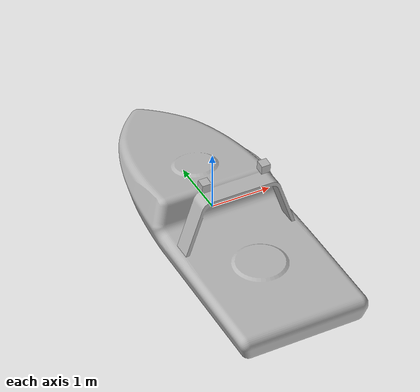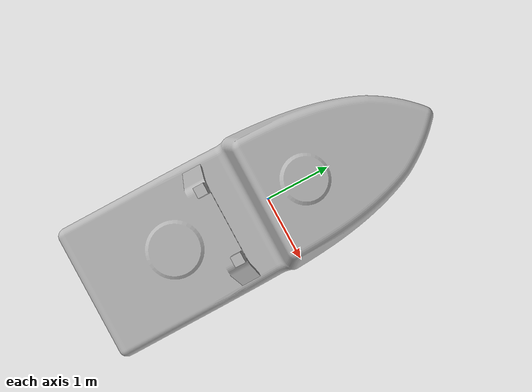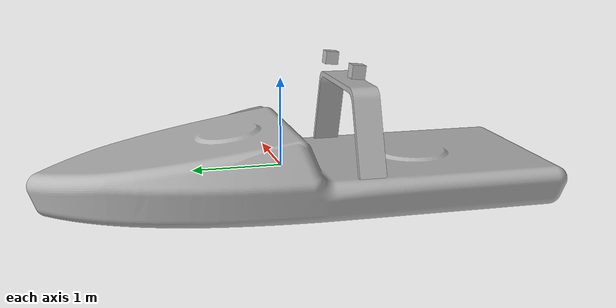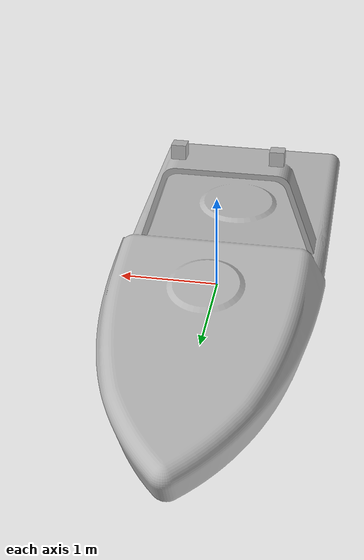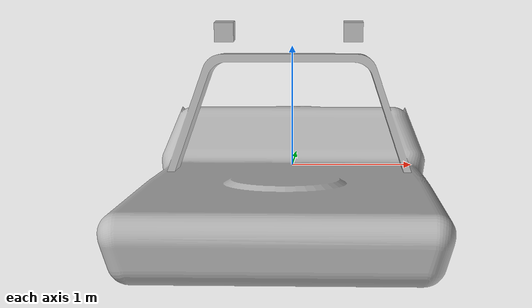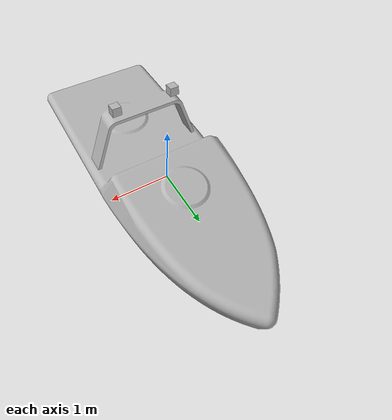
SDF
<?xml version="1.0" ?>
<sdf version="1.5">
  <model name="monodrone_2">
    <link name="link">
 	<inertial>
	     <mass>1.0</mass>
	      <inertia>
	       <ixx>0.008</ixx>
	       <ixy>0</ixy>
	       <ixz>0</ixz>
	       <iyy>0.015</iyy>
	       <iyz>0</iyz>
	       <izz>0.017</izz>
	      </inertia>
	   </inertial>
      <collision name="monodrone_2_collision">
	<surface>
	 <contact>
		 <ode>
		 <max_vel>100.0</max_vel>
		 <min_depth>0.001</min_depth>
		 </ode>
	 </contact>
	 <friction>
		 <ode>
		 <mu>100000.0</mu>
		 <mu2>100000.0</mu2>
		 </ode>
	 </friction>
	</surface>

        <geometry>
          <mesh>
	     <uri>model://mono_drone_2/meshes/monodrone_2.stl</uri>
	     <scale> 3 3 3</scale>
          </mesh>
        </geometry>
      </collision>

      <visual name="monodrone_2_visual">
        <cast_shadows>false</cast_shadows>
        <geometry>
          <mesh>
	     <uri>model://mono_drone_2/meshes/monodrone_2.dae</uri>
	      <scale> 3 3 3</scale>
          </mesh>
        </geometry>
      </visual>
    </link>

	<link name='monodrone_2/camera1_link'>
	   <pose>0.5 -0.72 1.125 0 -0.1 1.570796325</pose>
	   <inertial>
	     <pose>0 0 0 0 0 0</pose>
	     <mass>0.001</mass>
	      <inertia>
	       <ixx>0.00001</ixx>
	       <ixy>0</ixy>
	       <ixz>0</ixz>
	       <iyy>0.00002</iyy>
	       <iyz>0</iyz>
	       <izz>0.00002</izz>
	      </inertia>
	   </inertial>
	   <collision name='camera1_link_collision'>
	     <geometry>
	      <box>
	       <size>0.15 0.15 0.15</size>
	      </box>
	     </geometry>
             <!--material name="red"/-->
	   </collision>
	   <visual name='camera1_link_visual'>
	    <geometry>
	     <box>
	      <size>0.15 0.15 0.15</size>
	     </box>
	    </geometry>
	    <!--material name="red"/-->
	   </visual>

	   <sensor type="camera" name="camera1">
	    <update_rate>30.0</update_rate>
	    <camera name='head'>
	     <horizontal_fov>1.0472</horizontal_fov>
	      <image>
	       <width>640</width>
	       <height>480</height>
	       <format>R8G8B8</format>
	      </image>
	      <clip>
	       <near>0.02</near>
	       <far>300</far>
	      </clip>
	    </camera>
	    <plugin name='camera1_controller' filename='libgazebo_ros_camera.so'>
	     <robotNamespace>/</robotNamespace>
	     <alwaysOn>true</alwaysOn>
	     <updateRate>0.0</updateRate>
	     <cameraName>monodrone_2/camera1</cameraName>
	     <imageTopicName>image_raw</imageTopicName>
	     <cameraInfoTopicName>camera_info</cameraInfoTopicName>
	     <frameName>camera</frameName>
	     <hackBaseline>0.07</hackBaseline>
	     <distortionK1>0.0</distortionK1>
	     <distortionK2>0.0</distortionK2>
	     <distortionK3>0.0</distortionK3>
	     <distortionT1>0.0</distortionT1>
	     <distortionT2>0.0</distortionT2>
	    </plugin>
	   </sensor>
	 </link>

	 <joint name='monodrone_2/camera1_joint' type='fixed'>
	  <child>monodrone_2/camera1_link</child>
	  <parent>link</parent>
	 </joint>

	<link name='monodrone_2/camera2_link'>
	   <pose>-0.5 -0.72 1.125 0 -0.1 1.570796325</pose>
	   <inertial>
	     <pose>0 0 0 0 0 0</pose>
	     <mass>0.001</mass>
	      <inertia>
	       <ixx>0.00001</ixx>
	       <ixy>0</ixy>
	       <ixz>0</ixz>
	       <iyy>0.00002</iyy>
	       <iyz>0</iyz>
	       <izz>0.00002</izz>
	      </inertia>
	   </inertial>
	   <collision name='camera2_link_collision'>
	     <geometry>
	      <box>
	       <size>0.15 0.15 0.15</size>
	      </box>
	     </geometry>
             <material name="red"/>
	   </collision>
	   <visual name='camera2_link_visual'>
	    <geometry>
	     <box>
	      <size>0.15 0.15 0.15</size>
	     </box>
	    </geometry>
	    <material name="red"/>
	   </visual>

	   <sensor type="camera" name="camera2">
	    <update_rate>30.0</update_rate>
	    <camera name='head'>
	     <horizontal_fov>1.0472</horizontal_fov>
	      <image>
	       <width>640</width>
	       <height>480</height>
	       <format>R8G8B8</format>
	      </image>
	      <clip>
	       <near>0.02</near>
	       <far>300</far>
	      </clip>
	    </camera>
	    <plugin name='camera2_controller' filename='libgazebo_ros_camera.so'>
	     <robotNamespace>/</robotNamespace>
	     <alwaysOn>true</alwaysOn>
	     <updateRate>0.0</updateRate>
	     <cameraName>monodrone_2/camera2</cameraName>
	     <imageTopicName>image_raw</imageTopicName>
	     <cameraInfoTopicName>camera_info</cameraInfoTopicName>
	     <frameName>camera</frameName>
	     <hackBaseline>0.07</hackBaseline>
	     <distortionK1>0.0</distortionK1>
	     <distortionK2>0.0</distortionK2>
	     <distortionK3>0.0</distortionK3>
	     <distortionT1>0.0</distortionT1>
	     <distortionT2>0.0</distortionT2>
	    </plugin>
	   </sensor>
	 </link>

	 <joint name='monodrone_2/camera2_joint' type='fixed'>
	  <child>monodrone_2/camera2_link</child>
	  <parent>link</parent>
	 </joint>
  </model>
</sdf>
